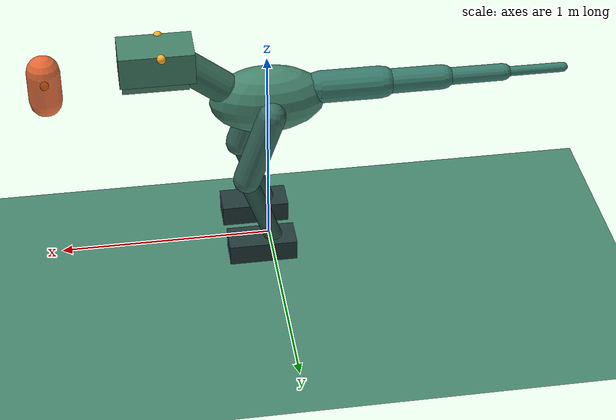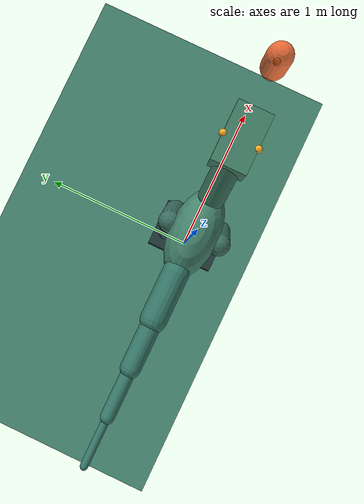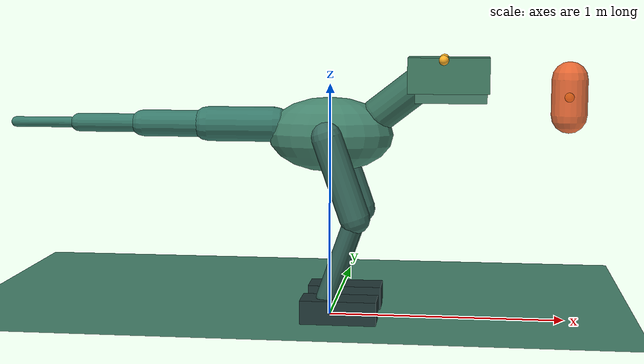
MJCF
<mujoco model="trex_3d_fixed">
  <compiler angle="degree" autolimits="true"/>
  <option timestep="0.002" integrator="implicitfast" gravity="0 0 -9.81" iterations="60"/>
  <default>
    <joint damping="1.2" armature=".025"/>
    <geom friction="1.0 .005 .0001" condim="3" solref=".008 1" rgba=".27 .52 .43 1"/>
    <site rgba="1 .5 0 1"/>
    <motor ctrllimited="true"/>
  </default>
  <visual>
    <global offwidth="1280" offheight="720"/>
    <headlight diffuse=".7 .7 .7" ambient=".4 .4 .4"/>
    <map shadowclip="2.0"/>
    <quality shadowsize="2048"/>
  </visual>
  <asset>
    <texture name="grid" type="2d" builtin="checker" rgb1=".16 .19 .24" rgb2=".20 .24 .29" width="256" height="256"/>
    <material name="ground" texture="grid" texrepeat="10 10" texuniform="true"/>
  </asset>
  <worldbody>
    <light pos="0 -3 5" dir="0 0 -1"/>
    <geom name="floor" type="plane" size="40 40 .1" material="ground"/>
    <body name="prey" mocap="true" pos="1.0 0 0.95"><geom name="prey_geom" type="capsule" fromto="0 0 -0.0750 0 0 0.0750" size="0.075" mass=".001" contype="1" conaffinity="1" rgba=".95 .35 .12 .85"/><site name="bite_point" pos="0 0 0" size=".02" rgba="1 .9 .2 1"/></body>
    <body name="torso" pos="0 0 0.785"><freejoint name="root"/>
      <geom name="torso" type="ellipsoid" size="0.27 0.14 0.16" mass="8.0" rgba=".27 .52 .43 1"/>
      <site name="torso_site" pos="0 0 0" size=".02" rgba="1 .2 .2 1"/>
      <body name="left_thigh" pos="0 0.15 0"><joint name="left_hip_roll" axis="1 0 0" range="-30 30" /><joint name="left_hip_yaw" axis="0 0 1" range="-35 35" /><joint name="left_hip" axis="0 1 0" range="-65 65" />
      <geom name="left_thigh_geom" type="capsule" fromto="0 0 0 0.1190 0 -0.3400" size="0.065" mass="1.8" rgba=".23 .43 .38 1"/>
      <body name="left_shin" pos="0.1190 0 -0.3400"><joint name="left_knee" axis="0 1 0" range="-85 45" />
        <geom name="left_shin_geom" type="capsule" fromto="0 0 0 -0.1190 0 -0.3400" size="0.043" mass="1.0" rgba=".20 .38 .34 1"/>
        <body name="left_foot" pos="-0.1190 0 -0.3400"><joint name="left_ankle" axis="0 1 0" range="-50 50" />
          <geom name="left_foot" type="box" pos="0.0544 0 -0.0500" size="0.16 0.075 0.05" mass="0.6" friction="1.200 0.005 0.0001" rgba=".13 .22 .22 1"/>
          <site name="left_ankle_site" pos="0 0 0" size=".012" rgba=".9 .9 .2 1"/>
        </body>
      </body>
    </body><body name="right_thigh" pos="0 -0.15 0"><joint name="right_hip_roll" axis="1 0 0" range="-30 30" /><joint name="right_hip_yaw" axis="0 0 1" range="-35 35" /><joint name="right_hip" axis="0 1 0" range="-65 65" />
      <geom name="right_thigh_geom" type="capsule" fromto="0 0 0 0.1190 0 -0.3400" size="0.065" mass="1.8" rgba=".23 .43 .38 1"/>
      <body name="right_shin" pos="0.1190 0 -0.3400"><joint name="right_knee" axis="0 1 0" range="-85 45" />
        <geom name="right_shin_geom" type="capsule" fromto="0 0 0 -0.1190 0 -0.3400" size="0.043" mass="1.0" rgba=".20 .38 .34 1"/>
        <body name="right_foot" pos="-0.1190 0 -0.3400"><joint name="right_ankle" axis="0 1 0" range="-50 50" />
          <geom name="right_foot" type="box" pos="0.0544 0 -0.0500" size="0.16 0.075 0.05" mass="0.6" friction="1.200 0.005 0.0001" rgba=".13 .22 .22 1"/>
          <site name="right_ankle_site" pos="0 0 0" size=".012" rgba=".9 .9 .2 1"/>
        </body>
      </body>
    </body>
      <body name="neck" pos=".20 0 .08"><joint name="neck" axis="0 1 0" range="-35 40" />
      <geom name="neck_geom" type="capsule" fromto="0 0 0 .18 0 .14" size=".075" mass="0.7" rgba=".22 .44 .36 1"/>
      <body name="head" pos=".18 0 .14">
        <geom name="skull" type="box" pos=".12 0 .035" size=".17 .10 .075" mass="1.3" rgba=".26 .50 .40 1"/>
        <geom name="eye_l" type="sphere" pos=".10 -.098 .10" size=".021" mass=".005" contype="0" conaffinity="0" rgba="1 .7 .15 1"/>
        <geom name="eye_r" type="sphere" pos=".10 .098 .10" size=".021" mass=".005" contype="0" conaffinity="0" rgba="1 .7 .15 1"/>
        <site name="mouth" pos=".27 0 -.045" size=".014" rgba="1 .4 .1 1"/>
        <body name="jaw" pos="-.01 0 -.055"><joint name="jaw" axis="0 1 0" range="0 35" damping="0.05"/>
          <geom name="jaw_geom" type="box" pos=".14 0 0" size=".15 .082 .025" mass="0.25" rgba=".30 .52 .43 1"/>
        </body>
      </body>
    </body>
      <body name="tail_0" pos="-.24 0 .04"><joint name="tail_0_pitch" axis="0 1 0" range="-45 45" stiffness="0.0" damping="0.25"/><joint name="tail_0_yaw" axis="0 0 1" range="-35 35" stiffness="0.0" damping="0.25"/><geom name="tail_0_geom" type="capsule" fromto="0 0 0 -0.28750 0 0" size="0.07500" mass="1.07013" rgba=".22 .48 .42 1"/><body name="tail_1" pos="-0.28750 0 0"><joint name="tail_1_pitch" axis="0 1 0" range="-45 45" stiffness="0.0" damping="0.25"/><joint name="tail_1_yaw" axis="0 0 1" range="-35 35" stiffness="0.0" damping="0.25"/><geom name="tail_1_geom" type="capsule" fromto="0 0 0 -0.28750 0 0" size="0.05750" mass="0.66348" rgba=".22 .48 .42 1"/><body name="tail_2" pos="-0.28750 0 0"><joint name="tail_2_pitch" axis="0 1 0" range="-45 45" stiffness="0.0" damping="0.25"/><joint name="tail_2_yaw" axis="0 0 1" range="-35 35" stiffness="0.0" damping="0.25"/><geom name="tail_2_geom" type="capsule" fromto="0 0 0 -0.28750 0 0" size="0.04000" mass="0.41136" rgba=".22 .48 .42 1"/><body name="tail_3" pos="-0.28750 0 0"><joint name="tail_3_pitch" axis="0 1 0" range="-45 45" stiffness="0.0" damping="0.25"/><joint name="tail_3_yaw" axis="0 0 1" range="-35 35" stiffness="0.0" damping="0.25"/><geom name="tail_3_geom" type="capsule" fromto="0 0 0 -0.28750 0 0" size="0.02250" mass="0.25504" rgba=".22 .48 .42 1"/></body></body></body></body>
    </body>
  </worldbody>
  <equality><joint joint1="tail_0_pitch" polycoef="0 0 0 0 0" solref=".004 1"/><joint joint1="tail_0_yaw" polycoef="0 0 0 0 0" solref=".004 1"/><joint joint1="tail_1_pitch" polycoef="0 0 0 0 0" solref=".004 1"/><joint joint1="tail_1_yaw" polycoef="0 0 0 0 0" solref=".004 1"/><joint joint1="tail_2_pitch" polycoef="0 0 0 0 0" solref=".004 1"/><joint joint1="tail_2_yaw" polycoef="0 0 0 0 0" solref=".004 1"/><joint joint1="tail_3_pitch" polycoef="0 0 0 0 0" solref=".004 1"/><joint joint1="tail_3_yaw" polycoef="0 0 0 0 0" solref=".004 1"/></equality>
  <actuator><motor name="left_hip_roll_motor" joint="left_hip_roll" ctrlrange="-55.0 55.0"/><motor name="left_hip_yaw_motor" joint="left_hip_yaw" ctrlrange="-55.0 55.0"/><motor name="left_hip_motor" joint="left_hip" ctrlrange="-55.0 55.0"/><motor name="left_knee_motor" joint="left_knee" ctrlrange="-55.0 55.0"/><motor name="left_ankle_motor" joint="left_ankle" ctrlrange="-55.0 55.0"/><motor name="right_hip_roll_motor" joint="right_hip_roll" ctrlrange="-55.0 55.0"/><motor name="right_hip_yaw_motor" joint="right_hip_yaw" ctrlrange="-55.0 55.0"/><motor name="right_hip_motor" joint="right_hip" ctrlrange="-55.0 55.0"/><motor name="right_knee_motor" joint="right_knee" ctrlrange="-55.0 55.0"/><motor name="right_ankle_motor" joint="right_ankle" ctrlrange="-55.0 55.0"/><motor name="neck_motor" joint="neck" ctrlrange="-25.0 25.0"/><motor name="jaw_motor" joint="jaw" ctrlrange="-14.0 14.0"/><motor name="tail_0_pitch_motor" joint="tail_0_pitch" ctrlrange="-32.0 32.0"/><motor name="tail_0_yaw_motor" joint="tail_0_yaw" ctrlrange="-32.0 32.0"/><motor name="tail_1_pitch_motor" joint="tail_1_pitch" ctrlrange="-26.0 26.0"/><motor name="tail_1_yaw_motor" joint="tail_1_yaw" ctrlrange="-26.0 26.0"/><motor name="tail_2_pitch_motor" joint="tail_2_pitch" ctrlrange="-20.0 20.0"/><motor name="tail_2_yaw_motor" joint="tail_2_yaw" ctrlrange="-20.0 20.0"/><motor name="tail_3_pitch_motor" joint="tail_3_pitch" ctrlrange="-14.0 14.0"/><motor name="tail_3_yaw_motor" joint="tail_3_yaw" ctrlrange="-14.0 14.0"/></actuator>
  <contact>
    <exclude body1="head" body2="jaw"/>
  </contact>
</mujoco>
